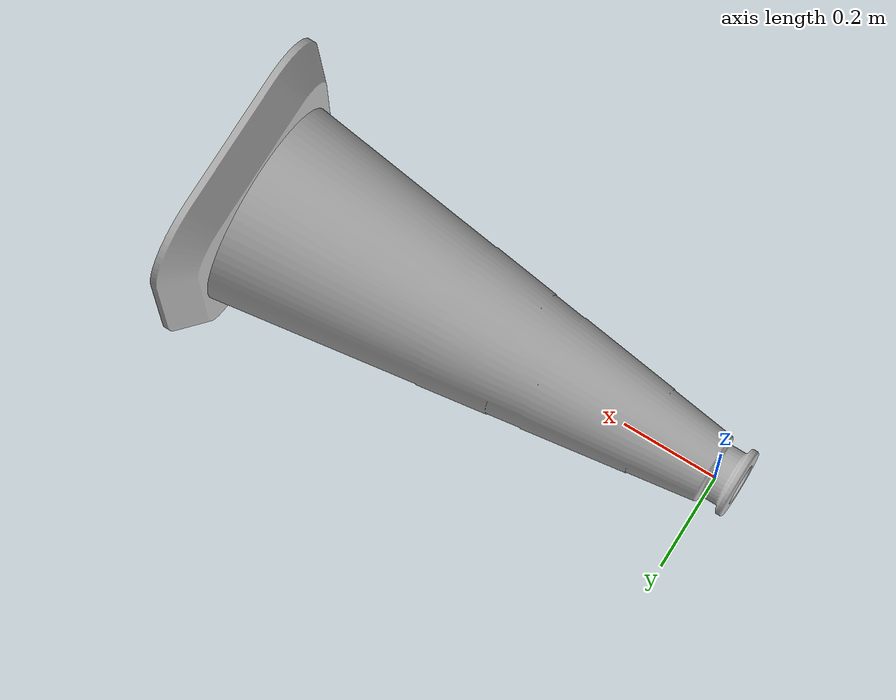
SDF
<?xml version='1.0'?>
<sdf version='1.4'>

  <model name="my_robot">
     <static>true</static>
           <link name='chassis'>
            <pose>0 0 .1 0 0 0</pose>

            <collision name='collision'>
              <geometry>
                <box>
                  <size>.4 .2 .1</size>
                </box>
              </geometry>
            </collision>

           <visual name='visual'>
             <pose>1 0 -0.0376785 0 0 1.5707</pose>
             <geometry>
               <mesh>
		  <uri>model://my_model/meshes/traffic_cone.stl</uri>

               </mesh>
             </geometry>
            </visual>
          </link>

  </model>
</sdf>
